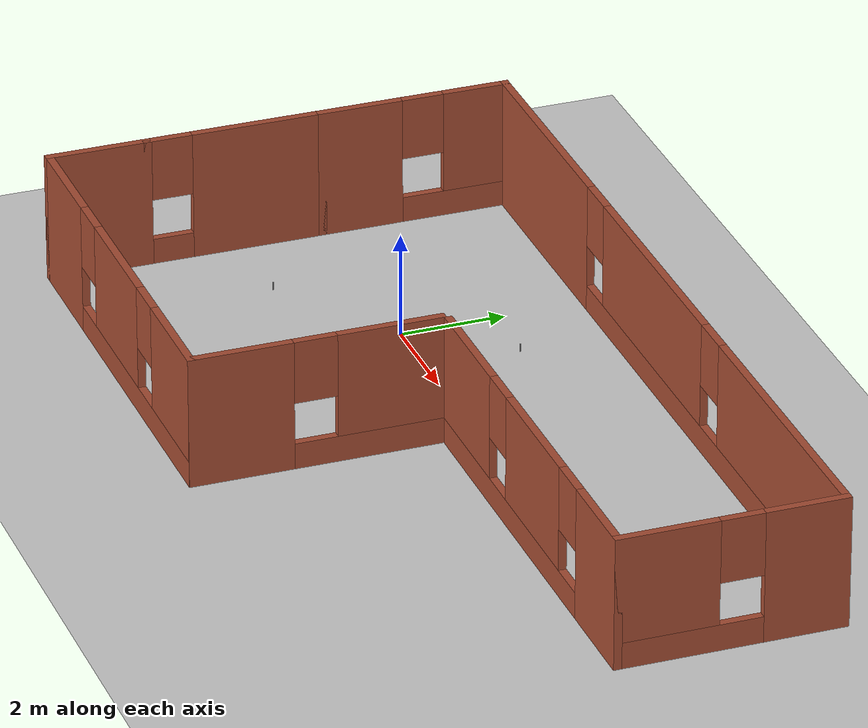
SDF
<sdf version="1.7">
 <world name="default">
  <plugin name="ros_link_attacher_plugin" filename="libgazebo_ros_link_attacher.so"/>
  <light name="sun" type="directional">
   <pose>0 0 10 0 -0 0</pose>
   <diffuse>0.8 0.8 0.8 1</diffuse>
   <specular>0.2 0.2 0.2 1</specular>
   <attenuation>
    <range>1000</range>
    <constant>0.9</constant>
    <linear>0.01</linear>
    <quadratic>0.001</quadratic>
   </attenuation>
   <direction>-0.5 0.1 -0.9</direction>
   <spot><inner_angle>0</inner_angle><outer_angle>0</outer_angle><falloff>0</falloff></spot>
  </light>
  <model name="ground_plane">
   <static>1</static>
   <link name="link">
    <collision name="collision">
     <geometry><plane><normal>0 0 1</normal><size>100 100</size></plane></geometry>
     <surface>
      <contact><collide_bitmask>65535</collide_bitmask></contact>
      <friction><ode><mu>100</mu><mu2>50</mu2></ode></friction>
     </surface>
    </collision>
    <visual name="visual">
     <cast_shadows>0</cast_shadows>
     <geometry><plane><normal>0 0 1</normal><size>100 100</size></plane></geometry>
     <material>
      <script><uri>file://media/materials/scripts/gazebo.material</uri><name>Gazebo/Grey</name></script>
     </material>
    </visual>
   </link>
  </model>
  <gravity>0 0 -9.8</gravity>
  <magnetic_field>6e-06 2.3e-05 -4.2e-05</magnetic_field>
  <atmosphere type="adiabatic"/>
  <physics type="ode">
   <max_step_size>0.001</max_step_size>
   <real_time_factor>1</real_time_factor>
   <real_time_update_rate>1000</real_time_update_rate>
  </physics>
  <scene><ambient>0.4 0.4 0.4 1</ambient><background>0.7 0.7 0.7 1</background><shadows>1</shadows></scene>
  <spherical_coordinates>
   <surface_model>EARTH_WGS84</surface_model>
   <latitude_deg>0</latitude_deg>
   <longitude_deg>0</longitude_deg>
   <elevation>0</elevation>
   <heading_deg>0</heading_deg>
  </spherical_coordinates>
  <model name="Untitled8">
   <pose>4 -0.853 0 0 -0 0</pose>
   <link name="Wall_10">
    <pose>-8.175 2.6 0 0 -0 1.5708</pose>
    <visual name="Wall_10_Visual_0">
     <pose>-1.05509 0 1.25 0 -0 0</pose>
     <geometry><box><size>1.63982 0.15 2.5</size></box></geometry>
     <material>
      <script><uri>file://media/materials/scripts/gazebo.material</uri><name>Gazebo/Bricks</name></script>
      <ambient>1 1 1 1</ambient>
     </material>
     <meta><layer>0</layer></meta>
    </visual>
    <collision name="Wall_10_Collision_0">
     <geometry><box><size>1.63982 0.15 2.5</size></box></geometry>
     <pose>-1.05509 0 1.25 0 -0 0</pose>
    </collision>
    <visual name="Wall_10_Visual_1">
     <pose>0.819908 0 0.25 0 -0 0</pose>
     <geometry><box><size>2.11018 0.15 0.5</size></box></geometry>
     <material>
      <script><uri>file://media/materials/scripts/gazebo.material</uri><name>Gazebo/Bricks</name></script>
      <ambient>1 1 1 1</ambient>
     </material>
     <meta><layer>0</layer></meta>
    </visual>
    <collision name="Wall_10_Collision_1">
     <geometry><box><size>2.11018 0.15 0.5</size></box></geometry>
     <pose>0.819908 0 0.25 0 -0 0</pose>
    </collision>
    <visual name="Wall_10_Visual_2">
     <pose>1.21991 0 1.5 0 -0 0</pose>
     <geometry><box><size>1.31018 0.15 2</size></box></geometry>
     <material>
      <script><uri>file://media/materials/scripts/gazebo.material</uri><name>Gazebo/Bricks</name></script>
      <ambient>1 1 1 1</ambient>
     </material>
     <meta><layer>0</layer></meta>
    </visual>
    <collision name="Wall_10_Collision_2">
     <geometry><box><size>1.31018 0.15 2</size></box></geometry>
     <pose>1.21991 0 1.5 0 -0 0</pose>
    </collision>
    <visual name="Wall_10_Visual_3">
     <pose>0.164817 0 1.9 0 -0 0</pose>
     <geometry><box><size>0.8 0.15 1.2</size></box></geometry>
     <material>
      <script><uri>file://media/materials/scripts/gazebo.material</uri><name>Gazebo/Bricks</name></script>
      <ambient>1 1 1 1</ambient>
     </material>
     <meta><layer>0</layer></meta>
    </visual>
    <collision name="Wall_10_Collision_3">
     <geometry><box><size>0.8 0.15 1.2</size></box></geometry>
     <pose>0.164817 0 1.9 0 -0 0</pose>
    </collision>
   </link>
   <link name="Wall_11">
    <pose>0 4.4 0 0 -0 0</pose>
    <visual name="Wall_11_Visual_0">
     <pose>-5.99187 0 1.25 0 -0 0</pose>
     <geometry><box><size>4.51626 0.15 2.5</size></box></geometry>
     <material>
      <script><uri>file://media/materials/scripts/gazebo.material</uri><name>Gazebo/Bricks</name></script>
      <ambient>1 1 1 1</ambient>
     </material>
     <meta><layer>0</layer></meta>
    </visual>
    <collision name="Wall_11_Collision_0">
     <geometry><box><size>4.51626 0.15 2.5</size></box></geometry>
     <pose>-5.99187 0 1.25 0 -0 0</pose>
    </collision>
    <visual name="Wall_11_Visual_1">
     <pose>2.25813 0 0.25 0 -0 0</pose>
     <geometry><box><size>11.9837 0.15 0.5</size></box></geometry>
     <material>
      <script><uri>file://media/materials/scripts/gazebo.material</uri><name>Gazebo/Bricks</name></script>
      <ambient>1 1 1 1</ambient>
     </material>
     <meta><layer>0</layer></meta>
    </visual>
    <collision name="Wall_11_Collision_1">
     <geometry><box><size>11.9837 0.15 0.5</size></box></geometry>
     <pose>2.25813 0 0.25 0 -0 0</pose>
    </collision>
    <visual name="Wall_11_Visual_2">
     <pose>-0.570315 0 1.5 0 -0 0</pose>
     <geometry><box><size>4.72686 0.15 2</size></box></geometry>
     <material>
      <script><uri>file://media/materials/scripts/gazebo.material</uri><name>Gazebo/Bricks</name></script>
      <ambient>1 1 1 1</ambient>
     </material>
     <meta><layer>0</layer></meta>
    </visual>
    <collision name="Wall_11_Collision_2">
     <geometry><box><size>4.72686 0.15 2</size></box></geometry>
     <pose>-0.570315 0 1.5 0 -0 0</pose>
    </collision>
    <visual name="Wall_11_Visual_3">
     <pose>5.42156 0 1.5 0 -0 0</pose>
     <geometry><box><size>5.65688 0.15 2</size></box></geometry>
     <material>
      <script><uri>file://media/materials/scripts/gazebo.material</uri><name>Gazebo/Bricks</name></script>
      <ambient>1 1 1 1</ambient>
     </material>
     <meta><layer>0</layer></meta>
    </visual>
    <collision name="Wall_11_Collision_3">
     <geometry><box><size>5.65688 0.15 2</size></box></geometry>
     <pose>5.42156 0 1.5 0 -0 0</pose>
    </collision>
    <visual name="Wall_11_Visual_4">
     <pose>-3.33374 0 1.9 0 -0 0</pose>
     <geometry><box><size>0.8 0.15 1.2</size></box></geometry>
     <material>
      <script><uri>file://media/materials/scripts/gazebo.material</uri><name>Gazebo/Bricks</name></script>
      <ambient>1 1 1 1</ambient>
     </material>
     <meta><layer>0</layer></meta>
    </visual>
    <collision name="Wall_11_Collision_4">
     <geometry><box><size>0.8 0.15 1.2</size></box></geometry>
     <pose>-3.33374 0 1.9 0 -0 0</pose>
    </collision>
    <visual name="Wall_11_Visual_5">
     <pose>2.19312 0 1.9 0 -0 0</pose>
     <geometry><box><size>0.8 0.15 1.2</size></box></geometry>
     <material>
      <script><uri>file://media/materials/scripts/gazebo.material</uri><name>Gazebo/Bricks</name></script>
      <ambient>1 1 1 1</ambient>
     </material>
     <meta><layer>0</layer></meta>
    </visual>
    <collision name="Wall_11_Collision_5">
     <geometry><box><size>0.8 0.15 1.2</size></box></geometry>
     <pose>2.19312 0 1.9 0 -0 0</pose>
    </collision>
   </link>
   <link name="Wall_12">
    <pose>8.175 2.35 0 0 -0 -1.5708</pose>
    <visual name="Wall_12_Visual_0">
     <pose>-1.34748 0 1.25 0 -0 0</pose>
     <geometry><box><size>1.55504 0.15 2.5</size></box></geometry>
     <material>
      <script><uri>file://media/materials/scripts/gazebo.material</uri><name>Gazebo/Bricks</name></script>
      <ambient>1 1 1 1</ambient>
     </material>
     <meta><layer>0</layer></meta>
    </visual>
    <collision name="Wall_12_Collision_0">
     <geometry><box><size>1.55504 0.15 2.5</size></box></geometry>
     <pose>-1.34748 0 1.25 0 -0 0</pose>
    </collision>
    <visual name="Wall_12_Visual_1">
     <pose>0.777522 0 0.25 0 -0 0</pose>
     <geometry><box><size>2.69496 0.15 0.5</size></box></geometry>
     <material>
      <script><uri>file://media/materials/scripts/gazebo.material</uri><name>Gazebo/Bricks</name></script>
      <ambient>1 1 1 1</ambient>
     </material>
     <meta><layer>0</layer></meta>
    </visual>
    <collision name="Wall_12_Collision_1">
     <geometry><box><size>2.69496 0.15 0.5</size></box></geometry>
     <pose>0.777522 0 0.25 0 -0 0</pose>
    </collision>
    <visual name="Wall_12_Visual_2">
     <pose>1.17752 0 1.5 0 -0 0</pose>
     <geometry><box><size>1.89496 0.15 2</size></box></geometry>
     <material>
      <script><uri>file://media/materials/scripts/gazebo.material</uri><name>Gazebo/Bricks</name></script>
      <ambient>1 1 1 1</ambient>
     </material>
     <meta><layer>0</layer></meta>
    </visual>
    <collision name="Wall_12_Collision_2">
     <geometry><box><size>1.89496 0.15 2</size></box></geometry>
     <pose>1.17752 0 1.5 0 -0 0</pose>
    </collision>
    <visual name="Wall_12_Visual_3">
     <pose>-0.169956 0 1.9 0 -0 0</pose>
     <geometry><box><size>0.8 0.15 1.2</size></box></geometry>
     <material>
      <script><uri>file://media/materials/scripts/gazebo.material</uri><name>Gazebo/Bricks</name></script>
      <ambient>1 1 1 1</ambient>
     </material>
     <meta><layer>0</layer></meta>
    </visual>
    <collision name="Wall_12_Collision_3">
     <geometry><box><size>0.8 0.15 1.2</size></box></geometry>
     <pose>-0.169956 0 1.9 0 -0 0</pose>
    </collision>
   </link>
   <link name="Wall_13">
    <pose>4.125 0.3 0 0 -0 3.14159</pose>
    <visual name="Wall_13_Visual_0">
     <pose>-3.22046 0 1.25 0 -0 0</pose>
     <geometry><box><size>1.80907 0.15 2.5</size></box></geometry>
     <material>
      <script><uri>file://media/materials/scripts/gazebo.material</uri><name>Gazebo/Bricks</name></script>
      <ambient>1 1 1 1</ambient>
     </material>
     <meta><layer>0</layer></meta>
    </visual>
    <collision name="Wall_13_Collision_0">
     <geometry><box><size>1.80907 0.15 2.5</size></box></geometry>
     <pose>-3.22046 0 1.25 0 -0 0</pose>
    </collision>
    <visual name="Wall_13_Visual_1">
     <pose>0.904536 0 0.25 0 -0 0</pose>
     <geometry><box><size>6.44093 0.15 0.5</size></box></geometry>
     <material>
      <script><uri>file://media/materials/scripts/gazebo.material</uri><name>Gazebo/Bricks</name></script>
      <ambient>1 1 1 1</ambient>
     </material>
     <meta><layer>0</layer></meta>
    </visual>
    <collision name="Wall_13_Collision_1">
     <geometry><box><size>6.44093 0.15 0.5</size></box></geometry>
     <pose>0.904536 0 0.25 0 -0 0</pose>
    </collision>
    <visual name="Wall_13_Visual_2">
     <pose>-0.236883 0 1.5 0 -0 0</pose>
     <geometry><box><size>2.55809 0.15 2</size></box></geometry>
     <material>
      <script><uri>file://media/materials/scripts/gazebo.material</uri><name>Gazebo/Bricks</name></script>
      <ambient>1 1 1 1</ambient>
     </material>
     <meta><layer>0</layer></meta>
    </visual>
    <collision name="Wall_13_Collision_2">
     <geometry><box><size>2.55809 0.15 2</size></box></geometry>
     <pose>-0.236883 0 1.5 0 -0 0</pose>
    </collision>
    <visual name="Wall_13_Visual_3">
     <pose>2.98358 0 1.5 0 -0 0</pose>
     <geometry><box><size>2.28284 0.15 2</size></box></geometry>
     <material>
      <script><uri>file://media/materials/scripts/gazebo.material</uri><name>Gazebo/Bricks</name></script>
      <ambient>1 1 1 1</ambient>
     </material>
     <meta><layer>0</layer></meta>
    </visual>
    <collision name="Wall_13_Collision_3">
     <geometry><box><size>2.28284 0.15 2</size></box></geometry>
     <pose>2.98358 0 1.5 0 -0 0</pose>
    </collision>
    <visual name="Wall_13_Visual_4">
     <pose>-1.91593 0 1.9 0 -0 0</pose>
     <geometry><box><size>0.8 0.15 1.2</size></box></geometry>
     <material>
      <script><uri>file://media/materials/scripts/gazebo.material</uri><name>Gazebo/Bricks</name></script>
      <ambient>1 1 1 1</ambient>
     </material>
     <meta><layer>0</layer></meta>
    </visual>
    <collision name="Wall_13_Collision_4">
     <geometry><box><size>0.8 0.15 1.2</size></box></geometry>
     <pose>-1.91593 0 1.9 0 -0 0</pose>
    </collision>
    <visual name="Wall_13_Visual_5">
     <pose>1.44216 0 1.9 0 -0 0</pose>
     <geometry><box><size>0.8 0.15 1.2</size></box></geometry>
     <material>
      <script><uri>file://media/materials/scripts/gazebo.material</uri><name>Gazebo/Bricks</name></script>
      <ambient>1 1 1 1</ambient>
     </material>
     <meta><layer>0</layer></meta>
    </visual>
    <collision name="Wall_13_Collision_5">
     <geometry><box><size>0.8 0.15 1.2</size></box></geometry>
     <pose>1.44216 0 1.9 0 -0 0</pose>
    </collision>
   </link>
   <link name="Wall_3">
    <pose>-8.175 -0.875 0 0 -0 -1.5708</pose>
    <visual name="Wall_3_Visual_0">
     <pose>-0.46379 0 1.25 0 -0 0</pose>
     <geometry><box><size>2.57242 0.15 2.5</size></box></geometry>
     <material>
      <script><uri>file://media/materials/scripts/gazebo.material</uri><name>Gazebo/Bricks</name></script>
      <ambient>1 1 1 1</ambient>
     </material>
     <meta><layer>0</layer></meta>
    </visual>
    <collision name="Wall_3_Collision_0">
     <geometry><box><size>2.57242 0.15 2.5</size></box></geometry>
     <pose>-0.46379 0 1.25 0 -0 0</pose>
    </collision>
    <visual name="Wall_3_Visual_1">
     <pose>1.28621 0 0.25 0 -0 0</pose>
     <geometry><box><size>0.927579 0.15 0.5</size></box></geometry>
     <material>
      <script><uri>file://media/materials/scripts/gazebo.material</uri><name>Gazebo/Bricks</name></script>
      <ambient>1 1 1 1</ambient>
     </material>
     <meta><layer>0</layer></meta>
    </visual>
    <collision name="Wall_3_Collision_1">
     <geometry><box><size>0.927579 0.15 0.5</size></box></geometry>
     <pose>1.28621 0 0.25 0 -0 0</pose>
    </collision>
    <visual name="Wall_3_Visual_2">
     <pose>1.68621 0 1.5 0 -0 0</pose>
     <geometry><box><size>0.127579 0.15 2</size></box></geometry>
     <material>
      <script><uri>file://media/materials/scripts/gazebo.material</uri><name>Gazebo/Bricks</name></script>
      <ambient>1 1 1 1</ambient>
     </material>
     <meta><layer>0</layer></meta>
    </visual>
    <collision name="Wall_3_Collision_2">
     <geometry><box><size>0.127579 0.15 2</size></box></geometry>
     <pose>1.68621 0 1.5 0 -0 0</pose>
    </collision>
    <visual name="Wall_3_Visual_3">
     <pose>1.22242 0 1.9 0 -0 0</pose>
     <geometry><box><size>0.8 0.15 1.2</size></box></geometry>
     <material>
      <script><uri>file://media/materials/scripts/gazebo.material</uri><name>Gazebo/Bricks</name></script>
      <ambient>1 1 1 1</ambient>
     </material>
     <meta><layer>0</layer></meta>
    </visual>
    <collision name="Wall_3_Collision_3">
     <geometry><box><size>0.8 0.15 1.2</size></box></geometry>
     <pose>1.22242 0 1.9 0 -0 0</pose>
    </collision>
   </link>
   <link name="Wall_5">
    <collision name="Wall_5_Collision">
     <geometry><box><size>2 0.15 2.5</size></box></geometry>
     <pose>0 0 1.25 0 -0 0</pose>
    </collision>
    <visual name="Wall_5_Visual">
     <pose>0 0 1.25 0 -0 0</pose>
     <geometry><box><size>2 0.15 2.5</size></box></geometry>
     <material>
      <script><uri>file://media/materials/scripts/gazebo.material</uri><name>Gazebo/Bricks</name></script>
      <ambient>1 1 1 1</ambient>
     </material>
     <meta><layer>0</layer></meta>
    </visual>
    <pose>-8.175 -3.475 0 0 -0 -1.5708</pose>
   </link>
   <link name="Wall_6">
    <pose>-4.125 -4.4 0 0 -0 0</pose>
    <visual name="Wall_6_Visual_0">
     <pose>-3.03871 0 1.25 0 -0 0</pose>
     <geometry><box><size>2.17259 0.15 2.5</size></box></geometry>
     <material>
      <script><uri>file://media/materials/scripts/gazebo.material</uri><name>Gazebo/Bricks</name></script>
      <ambient>1 1 1 1</ambient>
     </material>
     <meta><layer>0</layer></meta>
    </visual>
    <collision name="Wall_6_Collision_0">
     <geometry><box><size>2.17259 0.15 2.5</size></box></geometry>
     <pose>-3.03871 0 1.25 0 -0 0</pose>
    </collision>
    <visual name="Wall_6_Visual_1">
     <pose>1.08629 0 0.25 0 -0 0</pose>
     <geometry><box><size>6.07741 0.15 0.5</size></box></geometry>
     <material>
      <script><uri>file://media/materials/scripts/gazebo.material</uri><name>Gazebo/Bricks</name></script>
      <ambient>1 1 1 1</ambient>
     </material>
     <meta><layer>0</layer></meta>
    </visual>
    <collision name="Wall_6_Collision_1">
     <geometry><box><size>6.07741 0.15 0.5</size></box></geometry>
     <pose>1.08629 0 0.25 0 -0 0</pose>
    </collision>
    <visual name="Wall_6_Visual_2">
     <pose>0.056673 0 1.5 0 -0 0</pose>
     <geometry><box><size>2.41817 0.15 2</size></box></geometry>
     <material>
      <script><uri>file://media/materials/scripts/gazebo.material</uri><name>Gazebo/Bricks</name></script>
      <ambient>1 1 1 1</ambient>
     </material>
     <meta><layer>0</layer></meta>
    </visual>
    <collision name="Wall_6_Collision_2">
     <geometry><box><size>2.41817 0.15 2</size></box></geometry>
     <pose>0.056673 0 1.5 0 -0 0</pose>
    </collision>
    <visual name="Wall_6_Visual_3">
     <pose>3.09538 0 1.5 0 -0 0</pose>
     <geometry><box><size>2.05924 0.15 2</size></box></geometry>
     <material>
      <script><uri>file://media/materials/scripts/gazebo.material</uri><name>Gazebo/Bricks</name></script>
      <ambient>1 1 1 1</ambient>
     </material>
     <meta><layer>0</layer></meta>
    </visual>
    <collision name="Wall_6_Collision_3">
     <geometry><box><size>2.05924 0.15 2</size></box></geometry>
     <pose>3.09538 0 1.5 0 -0 0</pose>
    </collision>
    <visual name="Wall_6_Visual_4">
     <pose>-1.55241 0 1.9 0 -0 0</pose>
     <geometry><box><size>0.8 0.15 1.2</size></box></geometry>
     <material>
      <script><uri>file://media/materials/scripts/gazebo.material</uri><name>Gazebo/Bricks</name></script>
      <ambient>1 1 1 1</ambient>
     </material>
     <meta><layer>0</layer></meta>
    </visual>
    <collision name="Wall_6_Collision_4">
     <geometry><box><size>0.8 0.15 1.2</size></box></geometry>
     <pose>-1.55241 0 1.9 0 -0 0</pose>
    </collision>
    <visual name="Wall_6_Visual_5">
     <pose>1.66576 0 1.9 0 -0 0</pose>
     <geometry><box><size>0.8 0.15 1.2</size></box></geometry>
     <material>
      <script><uri>file://media/materials/scripts/gazebo.material</uri><name>Gazebo/Bricks</name></script>
      <ambient>1 1 1 1</ambient>
     </material>
     <meta><layer>0</layer></meta>
    </visual>
    <collision name="Wall_6_Collision_5">
     <geometry><box><size>0.8 0.15 1.2</size></box></geometry>
     <pose>1.66576 0 1.9 0 -0 0</pose>
    </collision>
   </link>
   <link name="Wall_7">
    <pose>-0.075 -2.1 0 0 -0 1.5708</pose>
    <visual name="Wall_7_Visual_0">
     <pose>-1.4037 0 1.25 0 -0 0</pose>
     <geometry><box><size>1.9426 0.15 2.5</size></box></geometry>
     <material>
      <script><uri>file://media/materials/scripts/gazebo.material</uri><name>Gazebo/Bricks</name></script>
      <ambient>1 1 1 1</ambient>
     </material>
     <meta><layer>0</layer></meta>
    </visual>
    <collision name="Wall_7_Collision_0">
     <geometry><box><size>1.9426 0.15 2.5</size></box></geometry>
     <pose>-1.4037 0 1.25 0 -0 0</pose>
    </collision>
    <visual name="Wall_7_Visual_1">
     <pose>0.9713 0 0.25 0 -0 0</pose>
     <geometry><box><size>2.8074 0.15 0.5</size></box></geometry>
     <material>
      <script><uri>file://media/materials/scripts/gazebo.material</uri><name>Gazebo/Bricks</name></script>
      <ambient>1 1 1 1</ambient>
     </material>
     <meta><layer>0</layer></meta>
    </visual>
    <collision name="Wall_7_Collision_1">
     <geometry><box><size>2.8074 0.15 0.5</size></box></geometry>
     <pose>0.9713 0 0.25 0 -0 0</pose>
    </collision>
    <visual name="Wall_7_Visual_2">
     <pose>1.3713 0 1.5 0 -0 0</pose>
     <geometry><box><size>2.0074 0.15 2</size></box></geometry>
     <material>
      <script><uri>file://media/materials/scripts/gazebo.material</uri><name>Gazebo/Bricks</name></script>
      <ambient>1 1 1 1</ambient>
     </material>
     <meta><layer>0</layer></meta>
    </visual>
    <collision name="Wall_7_Collision_2">
     <geometry><box><size>2.0074 0.15 2</size></box></geometry>
     <pose>1.3713 0 1.5 0 -0 0</pose>
    </collision>
    <visual name="Wall_7_Visual_3">
     <pose>-0.032401 0 1.9 0 -0 0</pose>
     <geometry><box><size>0.8 0.15 1.2</size></box></geometry>
     <material>
      <script><uri>file://media/materials/scripts/gazebo.material</uri><name>Gazebo/Bricks</name></script>
      <ambient>1 1 1 1</ambient>
     </material>
     <meta><layer>0</layer></meta>
    </visual>
    <collision name="Wall_7_Collision_3">
     <geometry><box><size>0.8 0.15 1.2</size></box></geometry>
     <pose>-0.032401 0 1.9 0 -0 0</pose>
    </collision>
   </link>
   <static>1</static>
  </model>
  <model name="unit_cylinder">
   <pose>2.05775 1.52666 0.5 0 -0 0</pose>
   <link name="link">
    <inertial>
     <mass>0.02</mass>
     <inertia>
      <ixx>0.00145833</ixx>
      <ixy>0</ixy>
      <ixz>0</ixz>
      <iyy>0.00145833</iyy>
      <iyz>0</iyz>
      <izz>0.00125</izz>
     </inertia>
    </inertial>
    <collision name="collision">
     <geometry><cylinder><radius>0.01</radius><length>0.15</length></cylinder></geometry>
    </collision>
    <visual name="visual">
     <geometry><cylinder><radius>0.01</radius><length>0.15</length></cylinder></geometry>
     <material>
      <ambient>1 1 1 1</ambient>
      <diffuse>1 1 1 1</diffuse>
      <specular>0 0 0 0</specular>
      <emissive>1 1 1 1</emissive>
      <script><name>Gazebo/Grey</name><uri>file://media/materials/scripts/gazebo.material</uri></script>
     </material>
    </visual>
   </link>
  </model>
  <model name="unit_cylinder_0">
   <pose>-1.64397 -1.85958 0.5 0 -0 0</pose>
   <link name="link">
    <inertial>
     <mass>0.02</mass>
     <inertia>
      <ixx>0.00145833</ixx>
      <ixy>0</ixy>
      <ixz>0</ixz>
      <iyy>0.00145833</iyy>
      <iyz>0</iyz>
      <izz>0.00125</izz>
     </inertia>
    </inertial>
    <collision name="collision">
     <geometry><cylinder><radius>0.01</radius><length>0.15</length></cylinder></geometry>
    </collision>
    <visual name="visual">
     <geometry><cylinder><radius>0.01</radius><length>0.15</length></cylinder></geometry>
     <material>
      <ambient>1 1 1 1</ambient>
      <diffuse>1 1 1 1</diffuse>
      <specular>0 0 0 0</specular>
      <emissive>1 1 1 1</emissive>
      <script><name>Gazebo/Grey</name><uri>file://media/materials/scripts/gazebo.material</uri></script>
     </material>
    </visual>
   </link>
  </model>
 </world>
</sdf>
